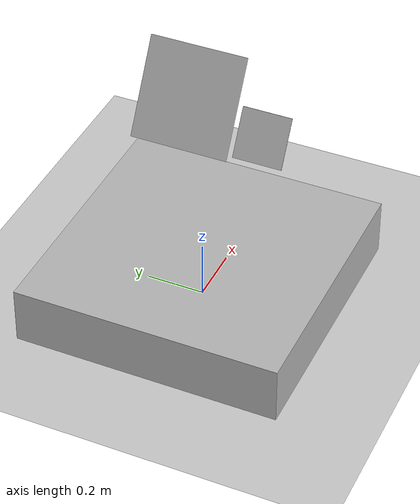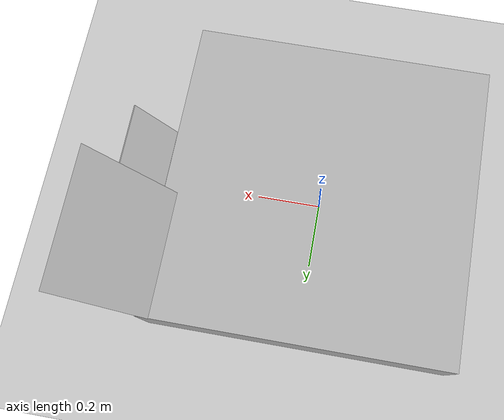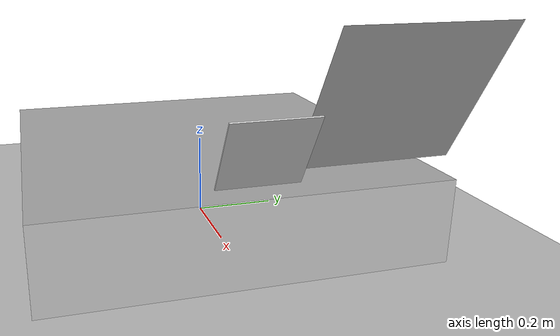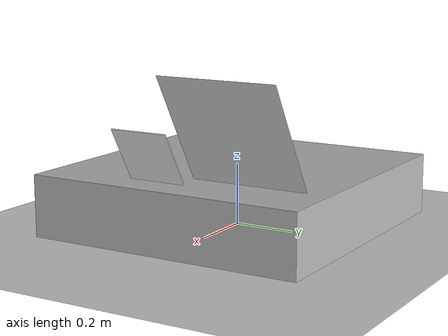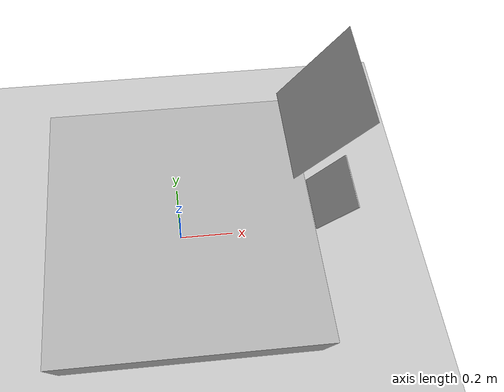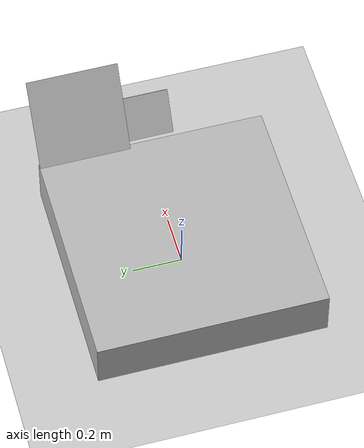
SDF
<sdf version='1.9'>
  <world name='windy'>
    <physics type="ode">
      <max_step_size>0.004</max_step_size>
      <real_time_factor>1.0</real_time_factor>
      <real_time_update_rate>250</real_time_update_rate>
    </physics>
    <plugin name='gz::sim::systems::Physics' filename='gz-sim-physics-system'/>
    <plugin name='gz::sim::systems::UserCommands' filename='gz-sim-user-commands-system'/>
    <plugin name='gz::sim::systems::SceneBroadcaster' filename='gz-sim-scene-broadcaster-system'/>
    <plugin name='gz::sim::systems::Contact' filename='gz-sim-contact-system'/>
    <plugin name='gz::sim::systems::Imu' filename='gz-sim-imu-system'/>
    <plugin name='gz::sim::systems::AirPressure' filename='gz-sim-air-pressure-system'/>
    <plugin name='gz::sim::systems::ApplyLinkWrench' filename='gz-sim-apply-link-wrench-system'/>
    <plugin name='gz::sim::systems::Sensors' filename='gz-sim-sensors-system'>
      <render_engine>ogre2</render_engine>
    </plugin>
    <gui fullscreen='false'>
      <plugin name='3D View' filename='GzScene3D'>
        <gz-gui>
          <title>3D View</title>
          <property type='bool' key='showTitleBar'>0</property>
          <property type='string' key='state'>docked</property>
        </gz-gui>
        <engine>ogre2</engine>
        <scene>scene</scene>
        <ambient_light>0.5984631152222222 0.5984631152222222 0.5984631152222222</ambient_light>
        <background_color>0.8984631152222222 0.8984631152222222 0.8984631152222222</background_color>
        <camera_pose>-6 0 6 0 0.5 0</camera_pose>
      </plugin>
      <plugin name='World control' filename='WorldControl'>
        <gz-gui>
          <title>World control</title>
          <property type='bool' key='showTitleBar'>0</property>
          <property type='bool' key='resizable'>0</property>
          <property type='double' key='height'>72</property>
          <property type='double' key='width'>121</property>
          <property type='double' key='z'>1</property>
          <property type='string' key='state'>floating</property>
          <anchors target='3D View'>
            <line own='left' target='left'/>
            <line own='bottom' target='bottom'/>
          </anchors>
        </gz-gui>
        <play_pause>1</play_pause>
        <step>1</step>
        <start_paused>1</start_paused>
      </plugin>
      <plugin name='World stats' filename='WorldStats'>
        <gz-gui>
          <title>World stats</title>
          <property type='bool' key='showTitleBar'>0</property>
          <property type='bool' key='resizable'>0</property>
          <property type='double' key='height'>110</property>
          <property type='double' key='width'>290</property>
          <property type='double' key='z'>1</property>
          <property type='string' key='state'>floating</property>
          <anchors target='3D View'>
            <line own='right' target='right'/>
            <line own='bottom' target='bottom'/>
          </anchors>
        </gz-gui>
        <sim_time>1</sim_time>
        <real_time>1</real_time>
        <real_time_factor>1</real_time_factor>
        <iterations>1</iterations>
      </plugin>
      <plugin name='Entity tree' filename='EntityTree'/>
    </gui>
    <gravity>0 0 -9.8</gravity>
    <magnetic_field>6e-06 2.3e-05 -4.2e-05</magnetic_field>
    <atmosphere type='adiabatic'/>
    <scene>
      <grid>false</grid>
      <ambient>0.4 0.4 0.4 1</ambient>
      <background>0.7 0.7 0.7 1</background>
      <shadows>true</shadows>
    </scene>
    <model name='ground_plane'>
      <static>true</static>
      <link name='link'>
        <collision name='collision'>
          <geometry>
            <plane>
              <normal>0 0 1</normal>
              <size>1 1</size>
            </plane>
          </geometry>
          <surface>
            <friction>
              <ode/>
            </friction>
            <bounce/>
            <contact/>
          </surface>
        </collision>
        <visual name='visual'>
          <geometry>
            <plane>
              <normal>0 0 1</normal>
              <size>100 100</size>
            </plane>
          </geometry>
          <material>
            <ambient>0.8 0.8 0.8 1</ambient>
            <diffuse>0.8 0.8 0.8 1</diffuse>
            <specular>0.8 0.8 0.8 1</specular>
          </material>
        </visual>
        <pose>0 0 0 0 -0 0</pose>
        <inertial>
          <pose>0 0 0 0 -0 0</pose>
          <mass>1</mass>
          <inertia>
            <ixx>1</ixx>
            <ixy>0</ixy>
            <ixz>0</ixz>
            <iyy>1</iyy>
            <iyz>0</iyz>
            <izz>1</izz>
          </inertia>
        </inertial>
        <enable_wind>true</enable_wind>
      </link>
      <pose>0 0 0 0 -0 0</pose>
      <self_collide>false</self_collide>
    </model>
    <light name='sunUTC' type='directional'>
      <pose>0 0 500 0 -0 0</pose>
      <cast_shadows>true</cast_shadows>
      <intensity>1</intensity>
      <direction>0.001 0.625 -0.78</direction>
      <diffuse>0.904 0.904 0.904 1</diffuse>
      <specular>0.271 0.271 0.271 1</specular>
      <attenuation>
        <range>2000</range>
        <linear>0</linear>
        <constant>1</constant>
        <quadratic>0</quadratic>
      </attenuation>
      <spot>
        <inner_angle>0</inner_angle>
        <outer_angle>0</outer_angle>
        <falloff>0</falloff>
      </spot>
    </light>

    <wind>
	    <linear_velocity>10 10 10</linear_velocity>
    </wind>

    <!-- Load the plugin for the wind -->

    <include>
      <pose>0 0 0 0 0 0</pose>
      <uri>model:///landing_platform_tilted_tags</uri>
    </include>

  </world>
</sdf>

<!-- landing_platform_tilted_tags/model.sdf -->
<sdf version='1.9'>
  <model name='tag01'>

  <plugin
      filename="gz-sim-odometry-publisher-system"
      name="gz::sim::systems::OdometryPublisher">
      <dimensions>3</dimensions>
  </plugin>

  <static>true</static>
    <link name='main'>
      <pose>0 0 0.1 0 0 0</pose>
      <collision name="collision">
        <geometry>
            <box>
              <size>0.92 0.92 0.2</size>
              <!-- ATTENTION changé d 0.2 à 0.8 pour tests -->
            </box>
        </geometry>
      </collision>

      <visual name='visual'>
          <pose>0 0 0 0 0 0</pose>
          <geometry>
            <box>
              <size>0.92 0.92 0.2</size>
            </box>
        </geometry>
	    </visual>

      <visual name='tag_00'>
          <pose>0.50 0.28 0.3 1.05 0 -1.57</pose>

          <geometry>
            <mesh>
                <scale>0.2 0.2 0</scale>
                <uri>model://landing_platform_vertical_tags/meshes/tag_00.dae</uri>
            </mesh>
          </geometry>
	    </visual>

      <visual name='tag_01'>
          <pose>0.50 0 0.21 1.05 0 -1.57</pose>
          <geometry>
            <mesh>
                <scale>0.10 0.10 0.01</scale>
                <uri>model://landing_platform_vertical_tags/meshes/tag_01.dae</uri>
            </mesh>
          </geometry>
	    </visual>

     </link>

  </model>
</sdf>
